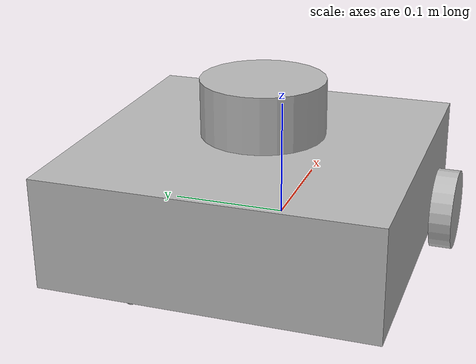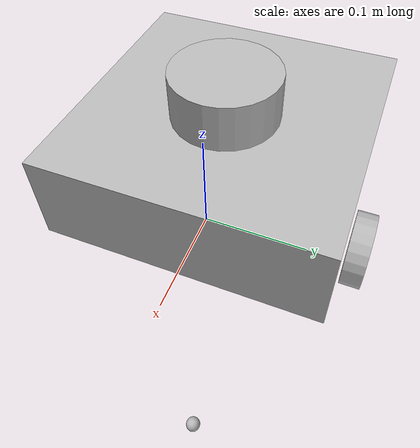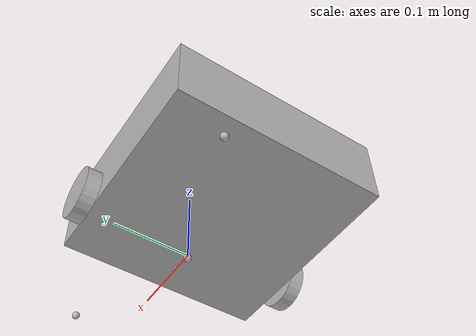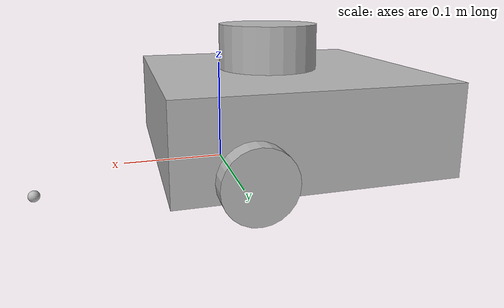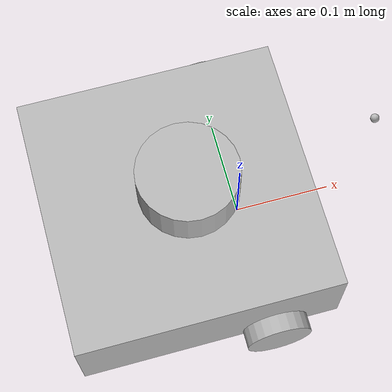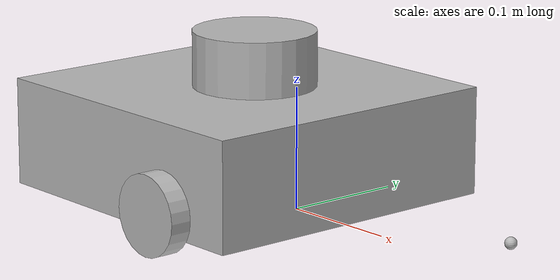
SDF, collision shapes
<?xml version="1.0" ?>
<sdf version="1.5">
  <model name="kairos">
  <pose>0.0 0.0 0.0 0.0 0.0 0.0</pose>

     <!-- ****************** ROBOT BASE FOOTPRINT ***************************  -->
    <link name="base_footprint"/>

    <link name="base_link">

      <inertial>
        <pose>-0.064 0 0.048 0 0 0</pose>
        <inertia>
          <ixx>4.2111447e-02</ixx>
          <ixy>0</ixy>
          <ixz>0</ixz>
          <iyy>4.2111447e-02</iyy>
          <iyz>0</iyz>
          <izz>7.5254874e-02</izz>
        </inertia>
        <mass>1.3729096e+00</mass>
      </inertial>

      <collision name="base_collision">
        <pose>-0.064 0 0.048 0 0 0</pose>
        <geometry>
          <box>
            <size>0.265 0.265 0.089</size>
          </box>
        </geometry>
      </collision>

      <visual name="base_visual">
        <pose>-0.064 0 0 0 0 0</pose>
        <geometry>
          <mesh>
            <uri>model://kairos_description/meshes/kairos.dae</uri>
            <scale>0.001 0.001 0.001</scale>
          </mesh>
        </geometry>
      </visual>
    </link>

    <!-- *********************** IMU SENSOR SETUP **************************  -->
    <link name="imu_link">
      <sensor name="tb3_imu" type="imu">
        <always_on>true</always_on>
        <update_rate>200</update_rate>
        <imu>
          <angular_velocity>
            <x>
              <noise type="gaussian">
                <mean>0.0</mean>
                <stddev>2e-4</stddev>
              </noise>
            </x>
            <y>
              <noise type="gaussian">
                <mean>0.0</mean>
                <stddev>2e-4</stddev>
              </noise>
            </y>
            <z>
              <noise type="gaussian">
                <mean>0.0</mean>
                <stddev>2e-4</stddev>
              </noise>
            </z>
          </angular_velocity>
          <linear_acceleration>
            <x>
              <noise type="gaussian">
                <mean>0.0</mean>
                <stddev>1.7e-2</stddev>
              </noise>
            </x>
            <y>
              <noise type="gaussian">
                <mean>0.0</mean>
                <stddev>1.7e-2</stddev>
              </noise>
            </y>
            <z>
              <noise type="gaussian">
                <mean>0.0</mean>
                <stddev>1.7e-2</stddev>
              </noise>
            </z>
          </linear_acceleration>
        </imu>
        <plugin name="turtlebot3_imu" filename="libgazebo_ros_imu_sensor.so">
          <ros>
            <remapping>~/out:=imu</remapping>
          </ros>
        </plugin>
      </sensor>
    </link>

    <!-- *********************** LiDAR SENSOR SETUP **************************  -->
    <link name="base_scan">
      <inertial>
        <pose>-0.052 0 0.111 0 0 0</pose>
        <inertia>
          <ixx>0.001</ixx>
          <ixy>0.000</ixy>
          <ixz>0.000</ixz>
          <iyy>0.001</iyy>
          <iyz>0.000</iyz>
          <izz>0.001</izz>
        </inertia>
        <mass>0.114</mass>
      </inertial>

      <collision name="lidar_sensor_collision">
        <pose>-0.052 0 0.111 0 0 0</pose>
        <geometry>
          <cylinder>
            <radius>0.0508</radius>
            <length>0.055</length>
          </cylinder>
        </geometry>
      </collision>

      <visual name="lidar_sensor_visual">
        <pose>0.15 0.155 0.242 0 0 3.1416</pose>

        <geometry>
          <mesh>
            <uri>model://turtlebot3_waffle/meshes/lds.dae</uri>
            <scale>0.001 0.001 0.001</scale>
          </mesh>
        </geometry>
      </visual>

      <sensor name="hls_lfcd_lds" type="ray">
        <always_on>true</always_on>
        <visualize>true</visualize>
        <pose>0.15 0.155 0.242 0 0 3.1416</pose>
        <update_rate>5</update_rate>
        <ray>
          <scan>
            <horizontal>
              <samples>270</samples>
              <resolution>1.000000</resolution>
              <min_angle>0.000000</min_angle>
              <max_angle>4.712390</max_angle>
            </horizontal>
          </scan>
          <range>
            <min>0.120000</min>
            <max>3.5</max>
            <resolution>0.015000</resolution>
          </range>
          <noise>
            <type>gaussian</type>
            <mean>0.0</mean>
            <stddev>0.01</stddev>
          </noise>
        </ray>
        <plugin name="turtlebot3_laserscan" filename="libgazebo_ros_ray_sensor.so">
          <ros>
            <remapping>~/out:=scan</remapping>
          </ros>
          <output_type>sensor_msgs/LaserScan</output_type>
          <frame_name>base_scan</frame_name>
        </plugin>
      </sensor>
    </link>

    <!-- *********************** LiDAR 2 SENSOR SETUP **************************  -->
    <link name="base_scan2">
      <inertial>
        <pose>-0.052 0 0.111 0 0 </pose>
        <inertia>
          <ixx>0.001</ixx>
          <ixy>0.000</ixy>
          <ixz>0.000</ixz>
          <iyy>0.001</iyy>
          <iyz>0.000</iyz>
          <izz>0.001</izz>
        </inertia>
        <mass>0.114</mass>
      </inertial>

      <collision name="lidar_sensor_collision2">
        <pose>-0.052 0 0.111 0 0 0</pose>
        <geometry>
          <cylinder>
            <radius>0.0508</radius>
            <length>0.055</length>
          </cylinder>
        </geometry>
      </collision>

      <visual name="lidar_sensor_visual2">
        <pose>-0.15 -0.15 0.242 0 0 1.5708</pose>
        <geometry>
          <mesh>
            <uri>model://turtlebot3_waffle/meshes/lds.dae</uri>
            <scale>0.001 0.001 0.001</scale>
          </mesh>
        </geometry>
      </visual>

      <sensor name="hls_lfcd_lds" type="ray">
        <always_on>true</always_on>
        <visualize>true</visualize>
        <pose>-0.15 -0.15 0.242 0 0 1.5708</pose>
        <update_rate>5</update_rate>
        <ray>
          <scan>
            <horizontal>
              <samples>270</samples>
              <resolution>1.000000</resolution>
              <min_angle>0.000000</min_angle>
              <max_angle>4.712390</max_angle>
            </horizontal>
          </scan>
          <range>
            <min>0.120000</min>
            <max>3.5</max>
            <resolution>0.015000</resolution>
          </range>
          <noise>
            <type>gaussian</type>
            <mean>0.0</mean>
            <stddev>0.01</stddev>
          </noise>
        </ray>
        <plugin name="turtlebot3_laserscan" filename="libgazebo_ros_ray_sensor.so">
          <ros>
            <remapping>~/out:=scan</remapping>
          </ros>
          <output_type>sensor_msgs/LaserScan</output_type>
          <frame_name>base_scan</frame_name>
        </plugin>
      </sensor>
    </link>

    <!-- *********************** CAMERA ******************************  -->

    <link name="camera_link"/>

    <link name="camera_rgb_optical_frame">
      <inertial>
        <pose>0.076 0.0 0.093 0 1 0</pose>
        <inertia>
          <ixx>0.001</ixx>
          <ixy>0.000</ixy>
          <ixz>0.000</ixz>
          <iyy>0.001</iyy>
          <iyz>0.000</iyz>
          <izz>0.001</izz>
        </inertia>
        <mass>0.035</mass>
      </inertial>

      <pose>0.076 0.0 0.093 0 1 0</pose>
      <sensor name="camera" type="camera">
        <always_on>true</always_on>
        <visualize>true</visualize>
        <update_rate>30</update_rate>
        <camera name="picam">
          <horizontal_fov>1.085595</horizontal_fov>
          <image>
              <width>640</width>
              <height>480</height>
              <format>R8G8B8</format>
          </image>
          <clip>
              <near>0.03</near>
              <far>100</far>
          </clip>
          <noise>
            <type>gaussian</type>
            <mean>0.0</mean>
            <stddev>0.007</stddev>
          </noise>
        </camera>
          <plugin name="camera_driver" filename="libgazebo_ros_camera.so">
            <ros>
            </ros>
          </plugin>
      </sensor>
    </link>

    <!-- *********************** DRIVE WHEELS ******************************  -->
    <link name="wheel_left_link">

      <inertial>
        <pose>0.0 0.144 0.023 -1.57 0 0</pose>
        <inertia>
          <ixx>1.8158194e-03</ixx>
          <ixy>-9.3392e-12</ixy>
          <ixz>1.04909e-11</ixz>
          <iyy>3.2922126e-03</iyy>
          <iyz>5.75694e-11</iyz>
          <izz>1.8158194e-03</izz>
        </inertia>
        <mass>2.8498940e-02</mass>
      </inertial>

      <collision name="wheel_left_collision">
        <pose>0.0 0.144 0.023 -1.57 0 0</pose>
        <geometry>
          <cylinder>
            <radius>0.033</radius>
            <length>0.018</length>
          </cylinder>
        </geometry>
        <surface>
          <!-- This friction pamareter don't contain reliable data!! -->
          <friction>
            <ode>
              <mu>100000</mu>
              <mu2>100000</mu2>
              <fdir1>0 0 0</fdir1>
              <slip1>0.0</slip1>
              <slip2>0.0</slip2>
            </ode>
          </friction>
          <contact>
            <ode>
              <soft_cfm>0</soft_cfm>
              <soft_erp>0.2</soft_erp>
              <kp>1e+5</kp>
              <kd>1</kd>
              <max_vel>0.01</max_vel>
              <min_depth>0.001</min_depth>
            </ode>
          </contact>
        </surface>
      </collision>

      <visual name="wheel_left_visual">
        <pose>0.0 0.144 0.023 0 0 0</pose>
        <geometry>
          <mesh>
            <uri>model://turtlebot3_waffle/meshes/tire.dae</uri>
            <scale>0.001 0.001 0.001</scale>
          </mesh>
        </geometry>
      </visual>
    </link>

    <link name="wheel_right_link">

      <inertial>
        <pose>0.0 -0.144 0.023 -1.57 0 0</pose>
        <inertia>
          <ixx>1.8158194e-03</ixx>
          <ixy>-9.3392e-12</ixy>
          <ixz>1.04909e-11</ixz>
          <iyy>3.2922126e-03</iyy>
          <iyz>5.75694e-11</iyz>
          <izz>1.8158194e-03</izz>
        </inertia>
        <mass>2.8498940e-02</mass>
      </inertial>

      <collision name="wheel_right_collision">
        <pose>0.0 -0.144 0.023 -1.57 0 0</pose>
        <geometry>
          <cylinder>
            <radius>0.033</radius>
            <length>0.018</length>
          </cylinder>
        </geometry>
        <surface>
          <!-- This friction pamareter don't contain reliable data!! -->
          <friction>
            <ode>
              <mu>100000</mu>
              <mu2>100000</mu2>
              <fdir1>0 0 0</fdir1>
              <slip1>0.0</slip1>
              <slip2>0.0</slip2>
            </ode>
          </friction>
          <contact>
            <ode>
              <soft_cfm>0</soft_cfm>
              <soft_erp>0.2</soft_erp>
              <kp>1e+5</kp>
              <kd>1</kd>
              <max_vel>0.01</max_vel>
              <min_depth>0.001</min_depth>
            </ode>
          </contact>
        </surface>
      </collision>

      <visual name="wheel_right_visual">
        <pose>0.0 -0.144 0.023 0 0 0</pose>
        <geometry>
          <mesh>
            <uri>model://turtlebot3_waffle/meshes/tire.dae</uri>
            <scale>0.001 0.001 0.001</scale>
          </mesh>
        </geometry>
      </visual>
    </link>

    <!-- *********************** CASTER ******************************  -->
    <link name='caster_front_right_link'>
      <pose>0 0 -0.004 0 0 0</pose>
      <inertial>
        <mass>0.001</mass>
        <inertia>
          <ixx>0.00001</ixx>
          <ixy>0.000</ixy>
          <ixz>0.000</ixz>
          <iyy>0.00001</iyy>
          <iyz>0.000</iyz>
          <izz>0.00001</izz>
        </inertia>
      </inertial>
      <collision name='collision'>
        <geometry>
          <sphere>
            <radius>0.005000</radius>
          </sphere>
        </geometry>
        <surface>
          <contact>
            <ode>
              <soft_cfm>0</soft_cfm>
              <soft_erp>0.2</soft_erp>
              <kp>1e+5</kp>
              <kd>1</kd>
              <max_vel>0.01</max_vel>
              <min_depth>0.001</min_depth>
            </ode>
          </contact>
        </surface>
      </collision>
    </link>

    <link name='caster_front_left_link'>
      <pose>-0.177 0.064 -0.004 -1.57 0 0</pose>
      <inertial>
        <mass>0.001</mass>
        <inertia>
          <ixx>0.00001</ixx>
          <ixy>0.000</ixy>
          <ixz>0.000</ixz>
          <iyy>0.00001</iyy>
          <iyz>0.000</iyz>
          <izz>0.00001</izz>
        </inertia>
      </inertial>
      <collision name='collision'>
        <geometry>
          <sphere>
            <radius>0.005000</radius>
          </sphere>
        </geometry>
        <surface>
          <contact>
            <ode>
              <soft_cfm>0</soft_cfm>
              <soft_erp>0.2</soft_erp>
              <kp>1e+5</kp>
              <kd>1</kd>
              <max_vel>0.01</max_vel>
              <min_depth>0.001</min_depth>
            </ode>
          </contact>
        </surface>
      </collision>
    </link>

    <link name='caster_back_right_link'>
      <pose>0.177 0.064 0 -0.004 0 0 0</pose>
      <inertial>
        <mass>0.001</mass>
        <inertia>
          <ixx>0.00001</ixx>
          <ixy>0.000</ixy>
          <ixz>0.000</ixz>
          <iyy>0.00001</iyy>
          <iyz>0.000</iyz>
          <izz>0.00001</izz>
        </inertia>
      </inertial>
      <collision name='collision'>
        <geometry>
          <sphere>
            <radius>0.005000</radius>
          </sphere>
        </geometry>
        <surface>
          <contact>
            <ode>
              <soft_cfm>0</soft_cfm>
              <soft_erp>0.2</soft_erp>
              <kp>1e+5</kp>
              <kd>1</kd>
              <max_vel>0.01</max_vel>
              <min_depth>0.001</min_depth>
            </ode>
          </contact>
        </surface>
      </collision>
    </link>

    <link name='caster_back_left_link'>
      <pose>-0.177 0.064 -0.004 -1.57 0 0</pose>
      <inertial>
        <mass>0.001</mass>
        <inertia>
          <ixx>0.00001</ixx>
          <ixy>0.000</ixy>
          <ixz>0.000</ixz>
          <iyy>0.00001</iyy>
          <iyz>0.000</iyz>
          <izz>0.00001</izz>
        </inertia>
      </inertial>
      <collision name='collision'>
        <geometry>
          <sphere>
            <radius>0.005000</radius>
          </sphere>
        </geometry>
        <surface>
          <contact>
            <ode>
              <soft_cfm>0</soft_cfm>
              <soft_erp>0.2</soft_erp>
              <kp>1e+5</kp>
              <kd>1</kd>
              <max_vel>0.01</max_vel>
              <min_depth>0.001</min_depth>
            </ode>
          </contact>
        </surface>
      </collision>
    </link>

    <joint name="base_joint" type="fixed">
      <parent>base_footprint</parent>
      <child>base_link</child>
      <pose>0.0 0.0 0.010 0 0 0</pose>
    </joint>

    <joint name="wheel_left_joint" type="revolute">
      <parent>base_link</parent>
      <child>wheel_left_link</child>
      <pose>0.0 0.144 0.023 -1.57 0 0</pose>
      <axis>
        <xyz>0 0 1</xyz>
      </axis>
    </joint>

    <joint name="wheel_right_joint" type="revolute">
      <parent>base_link</parent>
      <child>wheel_right_link</child>
      <pose>0.0 -0.144 0.023 -1.57 0 0</pose>
      <axis>
        <xyz>0 0 1</xyz>
      </axis>
    </joint>

    <joint name='caster_back_right_joint' type='ball'>
      <parent>base_link</parent>
      <child>caster_back_right_link</child>
    </joint>

    <joint name='caster_back_left_joint' type='ball'>
      <parent>base_link</parent>
      <child>caster_back_left_link</child>
    </joint>

    <joint name="imu_joint" type="fixed">
      <parent>base_link</parent>
      <child>imu_link</child>
      <pose>-0.032 0 0.068 0 0 0</pose>
      <axis>
        <xyz>0 0 1</xyz>
      </axis>
    </joint>

    <joint name="lidar_joint" type="fixed">
      <parent>base_link</parent>
      <child>base_scan</child>
      <pose>-0.064 0 0.121 0 0 0</pose>
      <axis>
        <xyz>0 0 1</xyz>
      </axis>
    </joint>

    <joint name="camera_joint" type="fixed">
      <parent>base_link</parent>
      <child>camera_link</child>
      <pose>0.073 -0.011 0.084 0 0 0</pose>
      <axis>
        <xyz>0 0 1</xyz>
      </axis>
    </joint>

    <joint name="camera_rgb_joint" type="fixed">
      <parent>camera_link</parent>
      <child>camera_rgb_optical_frame</child>
      <pose>0.003 0.011 0.009 0 0 0</pose>
      <axis>
        <xyz>0 0 1</xyz>
      </axis>
    </joint>

    <plugin name="turtlebot3_diff_drive" filename="libgazebo_ros_diff_drive.so">

      <ros>
      </ros>

      <update_rate>30</update_rate>

      <!-- wheels -->
      <left_joint>wheel_left_joint</left_joint>
      <right_joint>wheel_right_joint</right_joint>

      <!-- kinematics -->
      <wheel_separation>0.287</wheel_separation>
      <wheel_diameter>0.066</wheel_diameter>

      <!-- limits -->
      <max_wheel_torque>20</max_wheel_torque>
      <max_wheel_acceleration>1.0</max_wheel_acceleration>

      <command_topic>cmd_vel</command_topic>

      <!-- output -->
      <publish_odom>true</publish_odom>
      <publish_odom_tf>true</publish_odom_tf>
      <publish_wheel_tf>false</publish_wheel_tf>

      <odometry_topic>odom</odometry_topic>
      <odometry_frame>odom</odometry_frame>
      <robot_base_frame>base_footprint</robot_base_frame>

    </plugin>

    <plugin name="turtlebot3_joint_state" filename="libgazebo_ros_joint_state_publisher.so">
      <ros>
        <remapping>~/out:=joint_states</remapping>
      </ros>
      <update_rate>30</update_rate>
      <joint_name>wheel_left_joint</joint_name>
      <joint_name>wheel_right_joint</joint_name>
    </plugin>

  </model>
</sdf>
